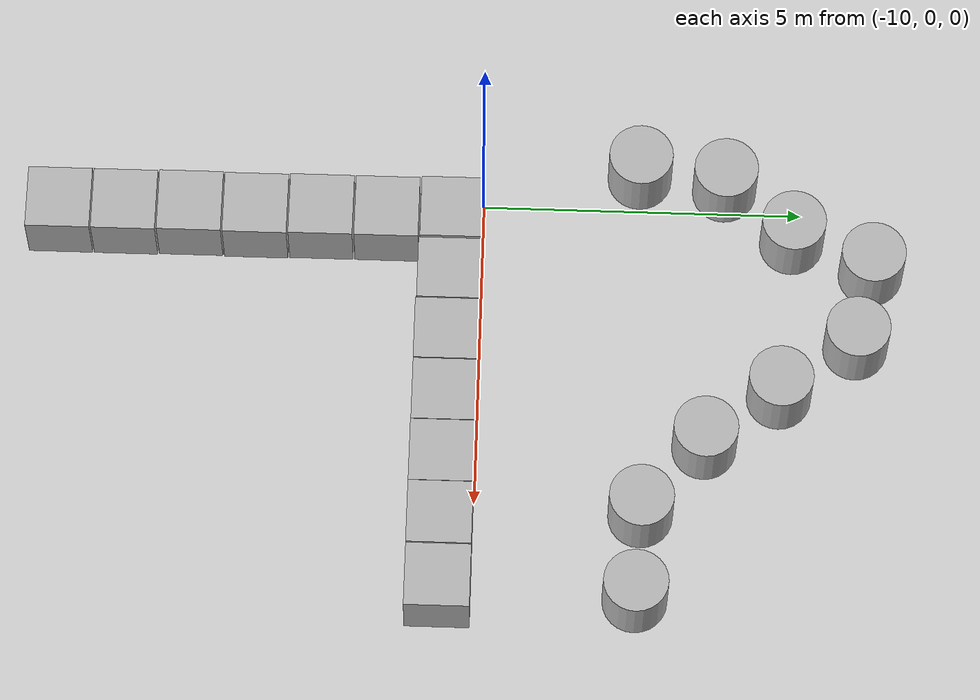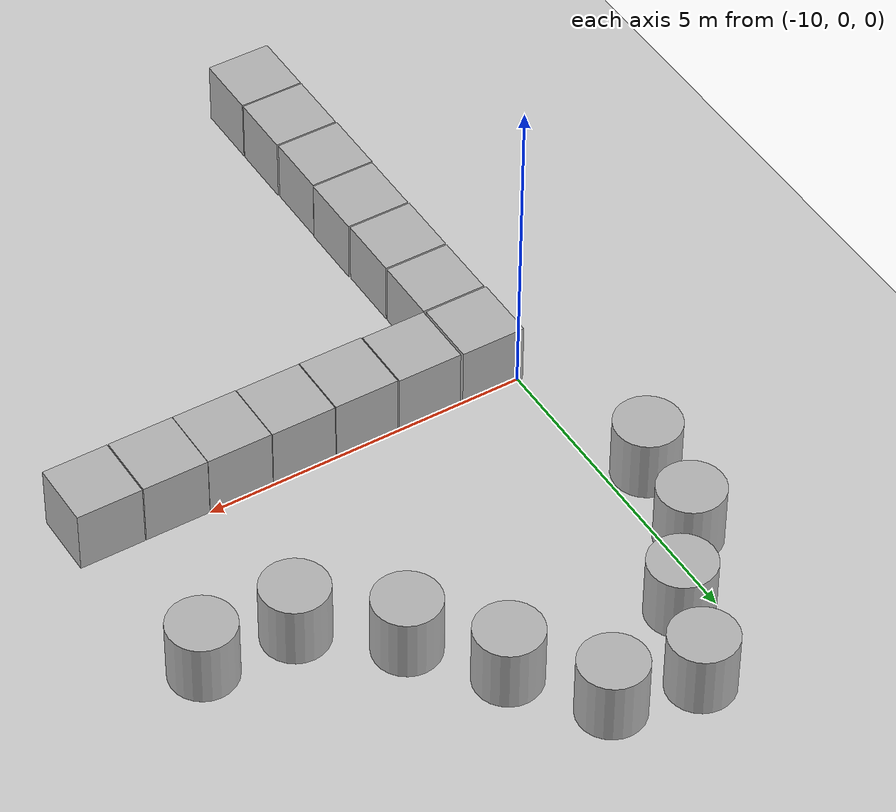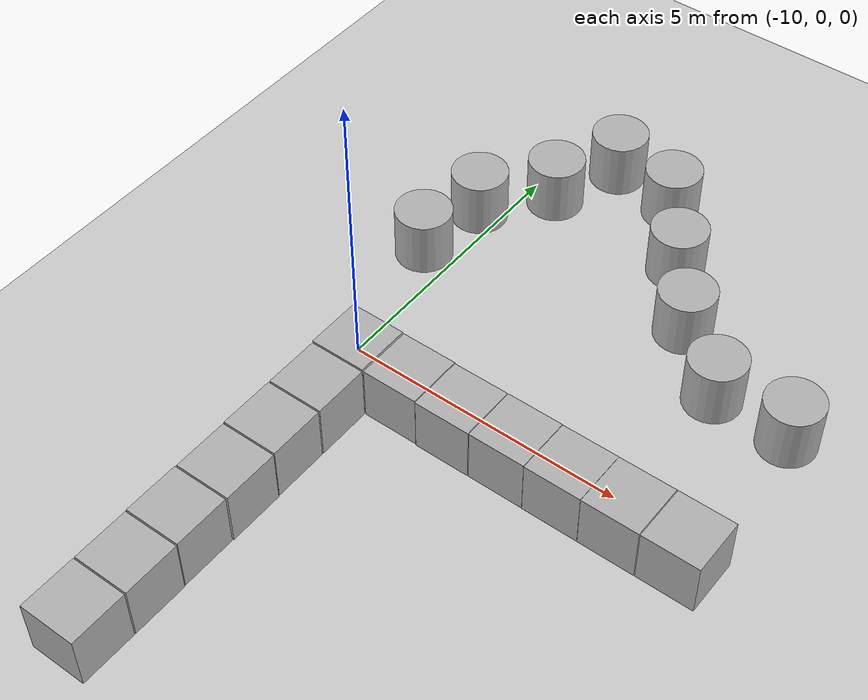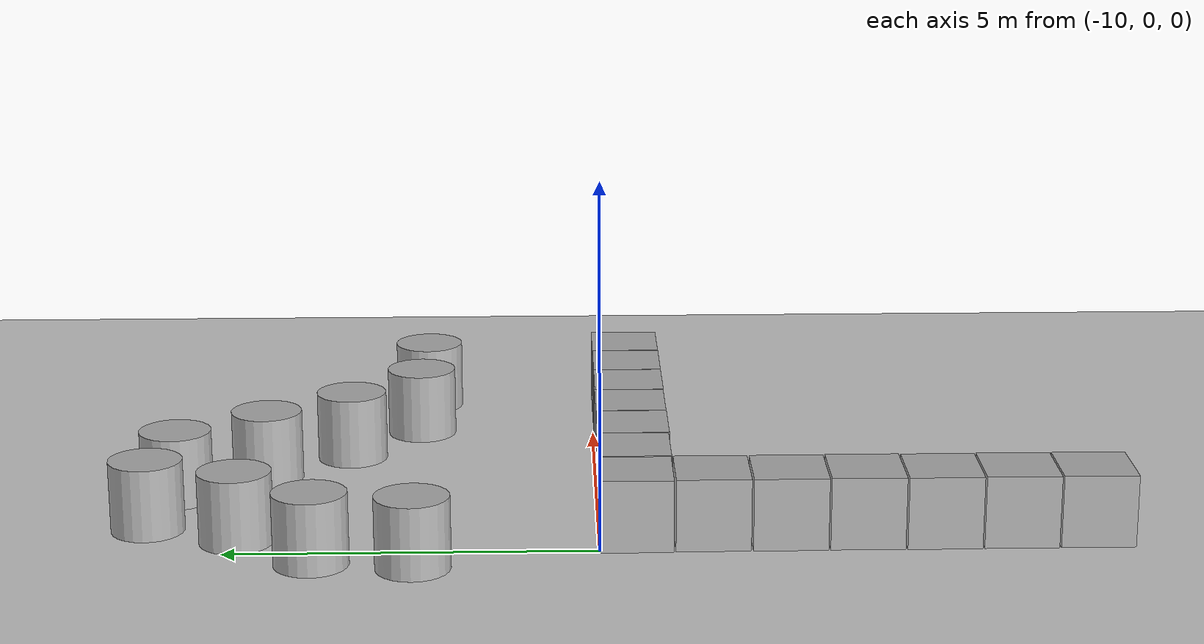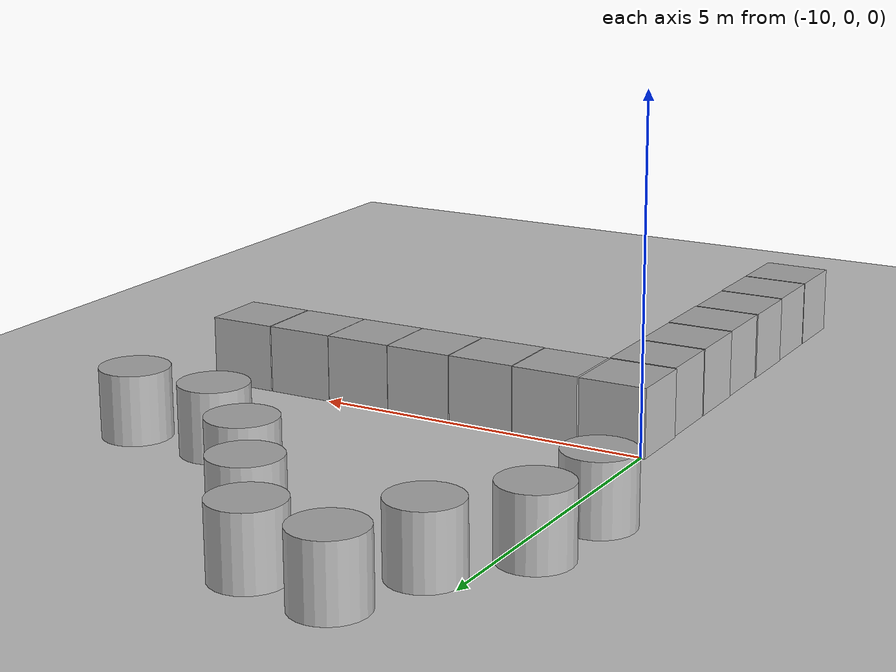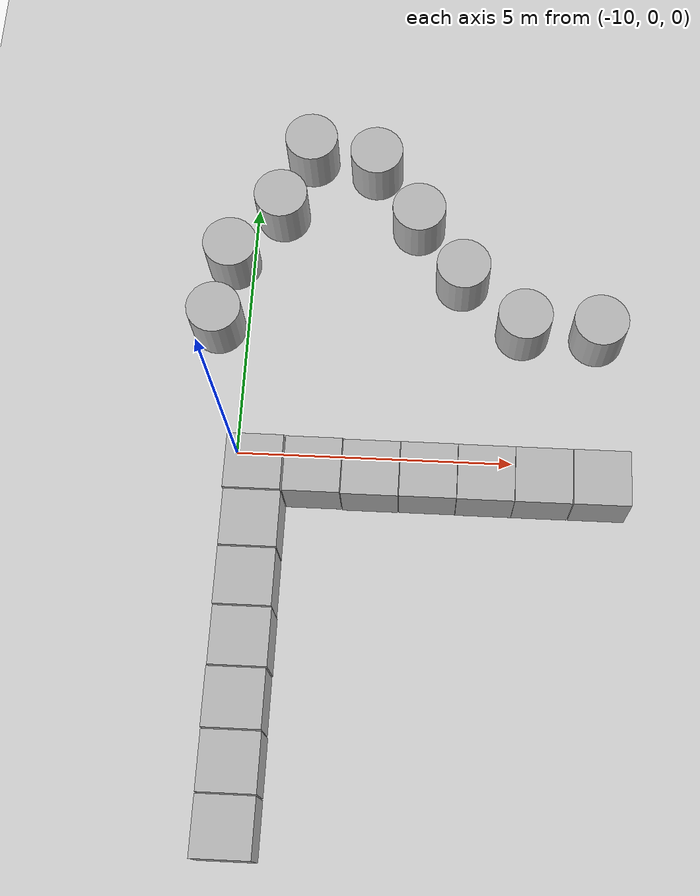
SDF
<sdf version='1.10'>
  <world name='empty'>
    <physics name='1ms' type='ode'>
      <max_step_size>0.001</max_step_size>
      <real_time_factor>1</real_time_factor>
      <solver>
        <type>quick</type>
        <iters>10</iters>
        <sor>1.3</sor>
      </solver>
      <real_time_update_rate>1000</real_time_update_rate>
    </physics>
    <plugin name='gz::sim::systems::Physics' filename='gz-sim-physics-system'/>
    <plugin name='gz::sim::systems::UserCommands' filename='gz-sim-user-commands-system'/>
    <plugin name='gz::sim::systems::SceneBroadcaster' filename='gz-sim-scene-broadcaster-system'/>
    <plugin name='gz::sim::systems::Sensors' filename='gz-sim-sensors-system'>
      <render_engine>ogre2</render_engine>
    </plugin>
    <plugin name='gz::sim::systems::Contact' filename='gz-sim-contact-system'/>
    <plugin name='trajectory_visual::TrajectoryVisualPlugin' filename='libtrajectory_visual_plugin.so'>
      <odom_topic>/odom</odom_topic>
      <min_dist>0.15</min_dist>
      <marker_radius>0.04</marker_radius>
      <color>1.0 0.2 0.0 1.0</color>
    </plugin>
    <gravity>0 0 -9.8000000000000007</gravity>
    <magnetic_field>5.5644999999999998e-06 2.2875799999999999e-05 -4.2388400000000002e-05</magnetic_field>
    <atmosphere type='adiabatic'/>
    <scene>
      <ambient>0.400000006 0.400000006 0.400000006 1</ambient>
      <background>0.699999988 0.699999988 0.699999988 1</background>
      <shadows>true</shadows>
    </scene>
    <model name='ground_plane'>
      <static>true</static>
      <link name='link'>
        <collision name='collision'>
          <geometry>
            <plane>
              <normal>0 0 1</normal>
              <size>100 100</size>
            </plane>
          </geometry>
          <surface>
            <friction>
              <ode>
                <mu>1</mu>
                <mu2>1</mu2>
              </ode>
            </friction>
            <bounce/>
            <contact/>
          </surface>
        </collision>
        <visual name='visual'>
          <geometry>
            <plane>
              <normal>0 0 1</normal>
              <size>100 100</size>
            </plane>
          </geometry>
          <material>
            <ambient>0.800000012 0.800000012 0.800000012 1</ambient>
            <diffuse>0.800000012 0.800000012 0.800000012 1</diffuse>
            <specular>0.800000012 0.800000012 0.800000012 1</specular>
          </material>
        </visual>
        <pose>0 0 0 0 0 0</pose>
        <inertial>
          <pose>0 0 0 0 0 0</pose>
          <mass>1</mass>
          <inertia>
            <ixx>1</ixx>
            <ixy>0</ixy>
            <ixz>0</ixz>
            <iyy>1</iyy>
            <iyz>0</iyz>
            <izz>1</izz>
          </inertia>
        </inertial>
        <enable_wind>false</enable_wind>
      </link>
      <pose>0 0 0 0 0 0</pose>
      <self_collide>false</self_collide>
    </model>
    <model name='cylinder'>
      <pose>-3.4815551340231528 2.5043755342540903 0.49999942638036005 -2.6911763794796138e-19 1.1721546005429021e-19 -2.1127119079518569e-20</pose>
      <link name='cylinder_link'>
        <inertial>
          <inertia>
            <ixx>0.14580000000000001</ixx>
            <ixy>0</ixy>
            <ixz>0</ixz>
            <iyy>0.14580000000000001</iyy>
            <iyz>0</iyz>
            <izz>0.125</izz>
          </inertia>
          <mass>1</mass>
          <pose>0 0 0 0 0 0</pose>
        </inertial>
        <collision name='cylinder_collision'>
          <geometry>
            <cylinder>
              <radius>0.5</radius>
              <length>1</length>
            </cylinder>
          </geometry>
          <surface>
            <friction>
              <ode/>
            </friction>
            <bounce/>
            <contact/>
          </surface>
        </collision>
        <visual name='cylinder_visual'>
          <geometry>
            <cylinder>
              <radius>0.5</radius>
              <length>1</length>
            </cylinder>
          </geometry>
          <material>
            <ambient>0.300000012 0.300000012 0.300000012 1</ambient>
            <diffuse>0.699999988 0.699999988 0.699999988 1</diffuse>
            <specular>1 1 1 1</specular>
          </material>
        </visual>
        <pose>0 0 0 0 0 0</pose>
        <enable_wind>false</enable_wind>
      </link>
      <static>false</static>
      <self_collide>false</self_collide>
    </model>
    <model name='box'>
      <pose>-4.4963167132048119 -0.50930663480307858 0.49999999990199806 6.2287739151293738e-22 9.3279666454713669e-22 -3.6315533669320137e-22</pose>
      <link name='box_link'>
        <inertial>
          <inertia>
            <ixx>0.16666</ixx>
            <ixy>0</ixy>
            <ixz>0</ixz>
            <iyy>0.16666</iyy>
            <iyz>0</iyz>
            <izz>0.16666</izz>
          </inertia>
          <mass>1</mass>
          <pose>0 0 0 0 0 0</pose>
        </inertial>
        <collision name='box_collision'>
          <geometry>
            <box>
              <size>1 1 1</size>
            </box>
          </geometry>
          <surface>
            <friction>
              <ode/>
            </friction>
            <bounce/>
            <contact/>
          </surface>
        </collision>
        <visual name='box_visual'>
          <geometry>
            <box>
              <size>1 1 1</size>
            </box>
          </geometry>
          <material>
            <ambient>0.300000012 0.300000012 0.300000012 1</ambient>
            <diffuse>0.699999988 0.699999988 0.699999988 1</diffuse>
            <specular>1 1 1 1</specular>
          </material>
        </visual>
        <pose>0 0 0 0 0 0</pose>
        <enable_wind>false</enable_wind>
      </link>
      <static>false</static>
      <self_collide>false</self_collide>
    </model>
    <model name='box_0'>
      <pose>-5.5001913575929482 -0.50826652320683952 0.49999999990199806 6.2287739151293738e-22 9.3279666454713669e-22 -3.6315533669320137e-22</pose>
      <link name='box_link'>
        <inertial>
          <inertia>
            <ixx>0.16666</ixx>
            <ixy>0</ixy>
            <ixz>0</ixz>
            <iyy>0.16666</iyy>
            <iyz>0</iyz>
            <izz>0.16666</izz>
          </inertia>
          <mass>1</mass>
          <pose>0 0 0 0 0 0</pose>
        </inertial>
        <collision name='box_collision'>
          <geometry>
            <box>
              <size>1 1 1</size>
            </box>
          </geometry>
          <surface>
            <friction>
              <ode/>
            </friction>
            <bounce/>
            <contact/>
          </surface>
        </collision>
        <visual name='box_visual'>
          <geometry>
            <box>
              <size>1 1 1</size>
            </box>
          </geometry>
          <material>
            <ambient>0.300000012 0.300000012 0.300000012 1</ambient>
            <diffuse>0.699999988 0.699999988 0.699999988 1</diffuse>
            <specular>1 1 1 1</specular>
          </material>
        </visual>
        <pose>0 0 0 0 0 0</pose>
        <enable_wind>false</enable_wind>
      </link>
      <static>false</static>
      <self_collide>false</self_collide>
    </model>
    <model name='box_1'>
      <pose>-6.5068457146219645 -0.50305590790951926 0.49999999990199806 1.7084716647436826e-21 1.7859135562978205e-21 -2.019312431235984e-22</pose>
      <link name='box_link'>
        <inertial>
          <inertia>
            <ixx>0.16666</ixx>
            <ixy>0</ixy>
            <ixz>0</ixz>
            <iyy>0.16666</iyy>
            <iyz>0</iyz>
            <izz>0.16666</izz>
          </inertia>
          <mass>1</mass>
          <pose>0 0 0 0 0 0</pose>
        </inertial>
        <collision name='box_collision'>
          <geometry>
            <box>
              <size>1 1 1</size>
            </box>
          </geometry>
          <surface>
            <friction>
              <ode/>
            </friction>
            <bounce/>
            <contact/>
          </surface>
        </collision>
        <visual name='box_visual'>
          <geometry>
            <box>
              <size>1 1 1</size>
            </box>
          </geometry>
          <material>
            <ambient>0.300000012 0.300000012 0.300000012 1</ambient>
            <diffuse>0.699999988 0.699999988 0.699999988 1</diffuse>
            <specular>1 1 1 1</specular>
          </material>
        </visual>
        <pose>0 0 0 0 0 0</pose>
        <enable_wind>false</enable_wind>
      </link>
      <static>false</static>
      <self_collide>false</self_collide>
    </model>
    <model name='box_2'>
      <pose>-7.5194086442308166 -0.50565850351863872 0.49999999990199806 6.2287739151293738e-22 9.3279666454713669e-22 -3.6315533669320137e-22</pose>
      <link name='box_link'>
        <inertial>
          <inertia>
            <ixx>0.16666</ixx>
            <ixy>0</ixy>
            <ixz>0</ixz>
            <iyy>0.16666</iyy>
            <iyz>0</iyz>
            <izz>0.16666</izz>
          </inertia>
          <mass>1</mass>
          <pose>0 0 0 0 0 0</pose>
        </inertial>
        <collision name='box_collision'>
          <geometry>
            <box>
              <size>1 1 1</size>
            </box>
          </geometry>
          <surface>
            <friction>
              <ode/>
            </friction>
            <bounce/>
            <contact/>
          </surface>
        </collision>
        <visual name='box_visual'>
          <geometry>
            <box>
              <size>1 1 1</size>
            </box>
          </geometry>
          <material>
            <ambient>0.300000012 0.300000012 0.300000012 1</ambient>
            <diffuse>0.699999988 0.699999988 0.699999988 1</diffuse>
            <specular>1 1 1 1</specular>
          </material>
        </visual>
        <pose>0 0 0 0 0 0</pose>
        <enable_wind>false</enable_wind>
      </link>
      <static>false</static>
      <self_collide>false</self_collide>
    </model>
    <model name='box_3'>
      <pose>-8.5347614055701992 -0.48991995517916787 0.49999999990199806 6.2287739151293738e-22 9.3279666454713669e-22 -3.6315533669320137e-22</pose>
      <link name='box_link'>
        <inertial>
          <inertia>
            <ixx>0.16666</ixx>
            <ixy>0</ixy>
            <ixz>0</ixz>
            <iyy>0.16666</iyy>
            <iyz>0</iyz>
            <izz>0.16666</izz>
          </inertia>
          <mass>1</mass>
          <pose>0 0 0 0 0 0</pose>
        </inertial>
        <collision name='box_collision'>
          <geometry>
            <box>
              <size>1 1 1</size>
            </box>
          </geometry>
          <surface>
            <friction>
              <ode/>
            </friction>
            <bounce/>
            <contact/>
          </surface>
        </collision>
        <visual name='box_visual'>
          <geometry>
            <box>
              <size>1 1 1</size>
            </box>
          </geometry>
          <material>
            <ambient>0.300000012 0.300000012 0.300000012 1</ambient>
            <diffuse>0.699999988 0.699999988 0.699999988 1</diffuse>
            <specular>1 1 1 1</specular>
          </material>
        </visual>
        <pose>0 0 0 0 0 0</pose>
        <enable_wind>false</enable_wind>
      </link>
      <static>false</static>
      <self_collide>false</self_collide>
    </model>
    <model name='box_4'>
      <pose>-9.5687965741588883 -0.47584779047719861 0.49999999990199806 6.2287739151293738e-22 9.3279666454713669e-22 -3.6315533669320137e-22</pose>
      <link name='box_link'>
        <inertial>
          <inertia>
            <ixx>0.16666</ixx>
            <ixy>0</ixy>
            <ixz>0</ixz>
            <iyy>0.16666</iyy>
            <iyz>0</iyz>
            <izz>0.16666</izz>
          </inertia>
          <mass>1</mass>
          <pose>0 0 0 0 0 0</pose>
        </inertial>
        <collision name='box_collision'>
          <geometry>
            <box>
              <size>1 1 1</size>
            </box>
          </geometry>
          <surface>
            <friction>
              <ode/>
            </friction>
            <bounce/>
            <contact/>
          </surface>
        </collision>
        <visual name='box_visual'>
          <geometry>
            <box>
              <size>1 1 1</size>
            </box>
          </geometry>
          <material>
            <ambient>0.300000012 0.300000012 0.300000012 1</ambient>
            <diffuse>0.699999988 0.699999988 0.699999988 1</diffuse>
            <specular>1 1 1 1</specular>
          </material>
        </visual>
        <pose>0 0 0 0 0 0</pose>
        <enable_wind>false</enable_wind>
      </link>
      <static>false</static>
      <self_collide>false</self_collide>
    </model>
    <model name='box_5'>
      <pose>-9.5459837766786251 -1.5028683449097797 0.49999999990199806 6.2287739151293738e-22 9.3279666454713669e-22 -3.6315533669320137e-22</pose>
      <link name='box_link'>
        <inertial>
          <inertia>
            <ixx>0.16666</ixx>
            <ixy>0</ixy>
            <ixz>0</ixz>
            <iyy>0.16666</iyy>
            <iyz>0</iyz>
            <izz>0.16666</izz>
          </inertia>
          <mass>1</mass>
          <pose>0 0 0 0 0 0</pose>
        </inertial>
        <collision name='box_collision'>
          <geometry>
            <box>
              <size>1 1 1</size>
            </box>
          </geometry>
          <surface>
            <friction>
              <ode/>
            </friction>
            <bounce/>
            <contact/>
          </surface>
        </collision>
        <visual name='box_visual'>
          <geometry>
            <box>
              <size>1 1 1</size>
            </box>
          </geometry>
          <material>
            <ambient>0.300000012 0.300000012 0.300000012 1</ambient>
            <diffuse>0.699999988 0.699999988 0.699999988 1</diffuse>
            <specular>1 1 1 1</specular>
          </material>
        </visual>
        <pose>0 0 0 0 0 0</pose>
        <enable_wind>false</enable_wind>
      </link>
      <static>false</static>
      <self_collide>false</self_collide>
    </model>
    <model name='box_6'>
      <pose>-9.5456829700605166 -2.5298455167124518 0.49999999990199806 6.2287739151293738e-22 9.3279666454713669e-22 -3.6315533669320137e-22</pose>
      <link name='box_link'>
        <inertial>
          <inertia>
            <ixx>0.16666</ixx>
            <ixy>0</ixy>
            <ixz>0</ixz>
            <iyy>0.16666</iyy>
            <iyz>0</iyz>
            <izz>0.16666</izz>
          </inertia>
          <mass>1</mass>
          <pose>0 0 0 0 0 0</pose>
        </inertial>
        <collision name='box_collision'>
          <geometry>
            <box>
              <size>1 1 1</size>
            </box>
          </geometry>
          <surface>
            <friction>
              <ode/>
            </friction>
            <bounce/>
            <contact/>
          </surface>
        </collision>
        <visual name='box_visual'>
          <geometry>
            <box>
              <size>1 1 1</size>
            </box>
          </geometry>
          <material>
            <ambient>0.300000012 0.300000012 0.300000012 1</ambient>
            <diffuse>0.699999988 0.699999988 0.699999988 1</diffuse>
            <specular>1 1 1 1</specular>
          </material>
        </visual>
        <pose>0 0 0 0 0 0</pose>
        <enable_wind>false</enable_wind>
      </link>
      <static>false</static>
      <self_collide>false</self_collide>
    </model>
    <model name='box_7'>
      <pose>-9.5345200485735244 -3.5560242284738512 0.49999999990199806 6.2287739151293738e-22 9.3279666454713669e-22 -3.6315533669320137e-22</pose>
      <link name='box_link'>
        <inertial>
          <inertia>
            <ixx>0.16666</ixx>
            <ixy>0</ixy>
            <ixz>0</ixz>
            <iyy>0.16666</iyy>
            <iyz>0</iyz>
            <izz>0.16666</izz>
          </inertia>
          <mass>1</mass>
          <pose>0 0 0 0 0 0</pose>
        </inertial>
        <collision name='box_collision'>
          <geometry>
            <box>
              <size>1 1 1</size>
            </box>
          </geometry>
          <surface>
            <friction>
              <ode/>
            </friction>
            <bounce/>
            <contact/>
          </surface>
        </collision>
        <visual name='box_visual'>
          <geometry>
            <box>
              <size>1 1 1</size>
            </box>
          </geometry>
          <material>
            <ambient>0.300000012 0.300000012 0.300000012 1</ambient>
            <diffuse>0.699999988 0.699999988 0.699999988 1</diffuse>
            <specular>1 1 1 1</specular>
          </material>
        </visual>
        <pose>0 0 0 0 0 0</pose>
        <enable_wind>false</enable_wind>
      </link>
      <static>false</static>
      <self_collide>false</self_collide>
    </model>
    <model name='box_8'>
      <pose>-9.5443170364917229 -4.5811170942569497 0.49999999990199806 6.2287739151293738e-22 9.3279666454713669e-22 -3.6315533669320137e-22</pose>
      <link name='box_link'>
        <inertial>
          <inertia>
            <ixx>0.16666</ixx>
            <ixy>0</ixy>
            <ixz>0</ixz>
            <iyy>0.16666</iyy>
            <iyz>0</iyz>
            <izz>0.16666</izz>
          </inertia>
          <mass>1</mass>
          <pose>0 0 0 0 0 0</pose>
        </inertial>
        <collision name='box_collision'>
          <geometry>
            <box>
              <size>1 1 1</size>
            </box>
          </geometry>
          <surface>
            <friction>
              <ode/>
            </friction>
            <bounce/>
            <contact/>
          </surface>
        </collision>
        <visual name='box_visual'>
          <geometry>
            <box>
              <size>1 1 1</size>
            </box>
          </geometry>
          <material>
            <ambient>0.300000012 0.300000012 0.300000012 1</ambient>
            <diffuse>0.699999988 0.699999988 0.699999988 1</diffuse>
            <specular>1 1 1 1</specular>
          </material>
        </visual>
        <pose>0 0 0 0 0 0</pose>
        <enable_wind>false</enable_wind>
      </link>
      <static>false</static>
      <self_collide>false</self_collide>
    </model>
    <model name='box_9'>
      <pose>-9.5333745996817836 -5.6063399588401044 0.49999999990199806 6.2287739151293738e-22 9.3279666454713669e-22 -3.6315533669320137e-22</pose>
      <link name='box_link'>
        <inertial>
          <inertia>
            <ixx>0.16666</ixx>
            <ixy>0</ixy>
            <ixz>0</ixz>
            <iyy>0.16666</iyy>
            <iyz>0</iyz>
            <izz>0.16666</izz>
          </inertia>
          <mass>1</mass>
          <pose>0 0 0 0 0 0</pose>
        </inertial>
        <collision name='box_collision'>
          <geometry>
            <box>
              <size>1 1 1</size>
            </box>
          </geometry>
          <surface>
            <friction>
              <ode/>
            </friction>
            <bounce/>
            <contact/>
          </surface>
        </collision>
        <visual name='box_visual'>
          <geometry>
            <box>
              <size>1 1 1</size>
            </box>
          </geometry>
          <material>
            <ambient>0.300000012 0.300000012 0.300000012 1</ambient>
            <diffuse>0.699999988 0.699999988 0.699999988 1</diffuse>
            <specular>1 1 1 1</specular>
          </material>
        </visual>
        <pose>0 0 0 0 0 0</pose>
        <enable_wind>false</enable_wind>
      </link>
      <static>false</static>
      <self_collide>false</self_collide>
    </model>
    <model name='box_10'>
      <pose>-9.5334201363539659 -6.6297930349103087 0.49999999990199806 6.2287739151293738e-22 9.3279666454713669e-22 -3.6315533669320137e-22</pose>
      <link name='box_link'>
        <inertial>
          <inertia>
            <ixx>0.16666</ixx>
            <ixy>0</ixy>
            <ixz>0</ixz>
            <iyy>0.16666</iyy>
            <iyz>0</iyz>
            <izz>0.16666</izz>
          </inertia>
          <mass>1</mass>
          <pose>0 0 0 0 0 0</pose>
        </inertial>
        <collision name='box_collision'>
          <geometry>
            <box>
              <size>1 1 1</size>
            </box>
          </geometry>
          <surface>
            <friction>
              <ode/>
            </friction>
            <bounce/>
            <contact/>
          </surface>
        </collision>
        <visual name='box_visual'>
          <geometry>
            <box>
              <size>1 1 1</size>
            </box>
          </geometry>
          <material>
            <ambient>0.300000012 0.300000012 0.300000012 1</ambient>
            <diffuse>0.699999988 0.699999988 0.699999988 1</diffuse>
            <specular>1 1 1 1</specular>
          </material>
        </visual>
        <pose>0 0 0 0 0 0</pose>
        <enable_wind>false</enable_wind>
      </link>
      <static>false</static>
      <self_collide>false</self_collide>
    </model>
    <model name='box_11'>
      <pose>-3.4800370508299561 -0.50782409499384129 0.49999999990199806 6.2287739151293738e-22 9.3279666454713669e-22 -3.6315533669320137e-22</pose>
      <link name='box_link'>
        <inertial>
          <inertia>
            <ixx>0.16666</ixx>
            <ixy>0</ixy>
            <ixz>0</ixz>
            <iyy>0.16666</iyy>
            <iyz>0</iyz>
            <izz>0.16666</izz>
          </inertia>
          <mass>1</mass>
          <pose>0 0 0 0 0 0</pose>
        </inertial>
        <collision name='box_collision'>
          <geometry>
            <box>
              <size>1 1 1</size>
            </box>
          </geometry>
          <surface>
            <friction>
              <ode/>
            </friction>
            <bounce/>
            <contact/>
          </surface>
        </collision>
        <visual name='box_visual'>
          <geometry>
            <box>
              <size>1 1 1</size>
            </box>
          </geometry>
          <material>
            <ambient>0.300000012 0.300000012 0.300000012 1</ambient>
            <diffuse>0.699999988 0.699999988 0.699999988 1</diffuse>
            <specular>1 1 1 1</specular>
          </material>
        </visual>
        <pose>0 0 0 0 0 0</pose>
        <enable_wind>false</enable_wind>
      </link>
      <static>false</static>
      <self_collide>false</self_collide>
    </model>
    <model name='cylinder_0'>
      <pose>-4.8632763383212172 2.5645544739859374 0.49999942638036005 3.849187311032064e-20 1.3488781536106054e-19 1.9177066143664939e-20</pose>
      <link name='cylinder_link'>
        <inertial>
          <inertia>
            <ixx>0.14580000000000001</ixx>
            <ixy>0</ixy>
            <ixz>0</ixz>
            <iyy>0.14580000000000001</iyy>
            <iyz>0</iyz>
            <izz>0.125</izz>
          </inertia>
          <mass>1</mass>
          <pose>0 0 0 0 0 0</pose>
        </inertial>
        <collision name='cylinder_collision'>
          <geometry>
            <cylinder>
              <radius>0.5</radius>
              <length>1</length>
            </cylinder>
          </geometry>
          <surface>
            <friction>
              <ode/>
            </friction>
            <bounce/>
            <contact/>
          </surface>
        </collision>
        <visual name='cylinder_visual'>
          <geometry>
            <cylinder>
              <radius>0.5</radius>
              <length>1</length>
            </cylinder>
          </geometry>
          <material>
            <ambient>0.300000012 0.300000012 0.300000012 1</ambient>
            <diffuse>0.699999988 0.699999988 0.699999988 1</diffuse>
            <specular>1 1 1 1</specular>
          </material>
        </visual>
        <pose>0 0 0 0 0 0</pose>
        <enable_wind>false</enable_wind>
      </link>
      <static>false</static>
      <self_collide>false</self_collide>
    </model>
    <model name='cylinder_1'>
      <pose>-6.0188821067011329 3.5293459419043995 0.49999942638036005 -5.7637778800471894e-20 2.0639697214226545e-19 -2.7955778524210395e-20</pose>
      <link name='cylinder_link'>
        <inertial>
          <inertia>
            <ixx>0.14580000000000001</ixx>
            <ixy>0</ixy>
            <ixz>0</ixz>
            <iyy>0.14580000000000001</iyy>
            <iyz>0</iyz>
            <izz>0.125</izz>
          </inertia>
          <mass>1</mass>
          <pose>0 0 0 0 0 0</pose>
        </inertial>
        <collision name='cylinder_collision'>
          <geometry>
            <cylinder>
              <radius>0.5</radius>
              <length>1</length>
            </cylinder>
          </geometry>
          <surface>
            <friction>
              <ode/>
            </friction>
            <bounce/>
            <contact/>
          </surface>
        </collision>
        <visual name='cylinder_visual'>
          <geometry>
            <cylinder>
              <radius>0.5</radius>
              <length>1</length>
            </cylinder>
          </geometry>
          <material>
            <ambient>0.300000012 0.300000012 0.300000012 1</ambient>
            <diffuse>0.699999988 0.699999988 0.699999988 1</diffuse>
            <specular>1 1 1 1</specular>
          </material>
        </visual>
        <pose>0 0 0 0 0 0</pose>
        <enable_wind>false</enable_wind>
      </link>
      <static>false</static>
      <self_collide>false</self_collide>
    </model>
    <model name='cylinder_2'>
      <pose>-6.8893556623931822 4.6760828210922476 0.49999942638036005 5.0573969886091227e-19 1.359089659944165e-19 -1.4809373450142268e-20</pose>
      <link name='cylinder_link'>
        <inertial>
          <inertia>
            <ixx>0.14580000000000001</ixx>
            <ixy>0</ixy>
            <ixz>0</ixz>
            <iyy>0.14580000000000001</iyy>
            <iyz>0</iyz>
            <izz>0.125</izz>
          </inertia>
          <mass>1</mass>
          <pose>0 0 0 0 0 0</pose>
        </inertial>
        <collision name='cylinder_collision'>
          <geometry>
            <cylinder>
              <radius>0.5</radius>
              <length>1</length>
            </cylinder>
          </geometry>
          <surface>
            <friction>
              <ode/>
            </friction>
            <bounce/>
            <contact/>
          </surface>
        </collision>
        <visual name='cylinder_visual'>
          <geometry>
            <cylinder>
              <radius>0.5</radius>
              <length>1</length>
            </cylinder>
          </geometry>
          <material>
            <ambient>0.300000012 0.300000012 0.300000012 1</ambient>
            <diffuse>0.699999988 0.699999988 0.699999988 1</diffuse>
            <specular>1 1 1 1</specular>
          </material>
        </visual>
        <pose>0 0 0 0 0 0</pose>
        <enable_wind>false</enable_wind>
      </link>
      <static>false</static>
      <self_collide>false</self_collide>
    </model>
    <model name='cylinder_3'>
      <pose>-7.7508904689555536 5.857744241137592 0.49999942638036005 4.1654113408482326e-19 1.8067996178664473e-19 -9.4100800038936803e-21</pose>
      <link name='cylinder_link'>
        <inertial>
          <inertia>
            <ixx>0.14580000000000001</ixx>
            <ixy>0</ixy>
            <ixz>0</ixz>
            <iyy>0.14580000000000001</iyy>
            <iyz>0</iyz>
            <izz>0.125</izz>
          </inertia>
          <mass>1</mass>
          <pose>0 0 0 0 0 0</pose>
        </inertial>
        <collision name='cylinder_collision'>
          <geometry>
            <cylinder>
              <radius>0.5</radius>
              <length>1</length>
            </cylinder>
          </geometry>
          <surface>
            <friction>
              <ode/>
            </friction>
            <bounce/>
            <contact/>
          </surface>
        </collision>
        <visual name='cylinder_visual'>
          <geometry>
            <cylinder>
              <radius>0.5</radius>
              <length>1</length>
            </cylinder>
          </geometry>
          <material>
            <ambient>0.300000012 0.300000012 0.300000012 1</ambient>
            <diffuse>0.699999988 0.699999988 0.699999988 1</diffuse>
            <specular>1 1 1 1</specular>
          </material>
        </visual>
        <pose>0 0 0 0 0 0</pose>
        <enable_wind>false</enable_wind>
      </link>
      <static>false</static>
      <self_collide>false</self_collide>
    </model>
    <model name='cylinder_4'>
      <pose>-9.0112321484829643 6.0935317477668036 0.49999942638036005 2.8374218245058555e-19 -1.7124587046990204e-19 -2.2958603872989259e-21</pose>
      <link name='cylinder_link'>
        <inertial>
          <inertia>
            <ixx>0.14580000000000001</ixx>
            <ixy>0</ixy>
            <ixz>0</ixz>
            <iyy>0.14580000000000001</iyy>
            <iyz>0</iyz>
            <izz>0.125</izz>
          </inertia>
          <mass>1</mass>
          <pose>0 0 0 0 0 0</pose>
        </inertial>
        <collision name='cylinder_collision'>
          <geometry>
            <cylinder>
              <radius>0.5</radius>
              <length>1</length>
            </cylinder>
          </geometry>
          <surface>
            <friction>
              <ode/>
            </friction>
            <bounce/>
            <contact/>
          </surface>
        </collision>
        <visual name='cylinder_visual'>
          <geometry>
            <cylinder>
              <radius>0.5</radius>
              <length>1</length>
            </cylinder>
          </geometry>
          <material>
            <ambient>0.300000012 0.300000012 0.300000012 1</ambient>
            <diffuse>0.699999988 0.699999988 0.699999988 1</diffuse>
            <specular>1 1 1 1</specular>
          </material>
        </visual>
        <pose>0 0 0 0 0 0</pose>
        <enable_wind>false</enable_wind>
      </link>
      <static>false</static>
      <self_collide>false</self_collide>
    </model>
    <model name='cylinder_5'>
      <pose>-9.5074254764262935 4.8515181720574816 0.49999942638036005 6.1192414915830091e-20 -6.303621985141893e-20 6.5441838709823338e-22</pose>
      <link name='cylinder_link'>
        <inertial>
          <inertia>
            <ixx>0.14580000000000001</ixx>
            <ixy>0</ixy>
            <ixz>0</ixz>
            <iyy>0.14580000000000001</iyy>
            <iyz>0</iyz>
            <izz>0.125</izz>
          </inertia>
          <mass>1</mass>
          <pose>0 0 0 0 0 0</pose>
        </inertial>
        <collision name='cylinder_collision'>
          <geometry>
            <cylinder>
              <radius>0.5</radius>
              <length>1</length>
            </cylinder>
          </geometry>
          <surface>
            <friction>
              <ode/>
            </friction>
            <bounce/>
            <contact/>
          </surface>
        </collision>
        <visual name='cylinder_visual'>
          <geometry>
            <cylinder>
              <radius>0.5</radius>
              <length>1</length>
            </cylinder>
          </geometry>
          <material>
            <ambient>0.300000012 0.300000012 0.300000012 1</ambient>
            <diffuse>0.699999988 0.699999988 0.699999988 1</diffuse>
            <specular>1 1 1 1</specular>
          </material>
        </visual>
        <pose>0 0 0 0 0 0</pose>
        <enable_wind>false</enable_wind>
      </link>
      <static>false</static>
      <self_collide>false</self_collide>
    </model>
    <model name='cylinder_6'>
      <pose>-10.371334697539169 3.783898509749493 0.49999942638036005 7.0436110769496234e-20 1.0182418344101958e-19 8.1283351512527311e-22</pose>
      <link name='cylinder_link'>
        <inertial>
          <inertia>
            <ixx>0.14580000000000001</ixx>
            <ixy>0</ixy>
            <ixz>0</ixz>
            <iyy>0.14580000000000001</iyy>
            <iyz>0</iyz>
            <izz>0.125</izz>
          </inertia>
          <mass>1</mass>
          <pose>0 0 0 0 0 0</pose>
        </inertial>
        <collision name='cylinder_collision'>
          <geometry>
            <cylinder>
              <radius>0.5</radius>
              <length>1</length>
            </cylinder>
          </geometry>
          <surface>
            <friction>
              <ode/>
            </friction>
            <bounce/>
            <contact/>
          </surface>
        </collision>
        <visual name='cylinder_visual'>
          <geometry>
            <cylinder>
              <radius>0.5</radius>
              <length>1</length>
            </cylinder>
          </geometry>
          <material>
            <ambient>0.300000012 0.300000012 0.300000012 1</ambient>
            <diffuse>0.699999988 0.699999988 0.699999988 1</diffuse>
            <specular>1 1 1 1</specular>
          </material>
        </visual>
        <pose>0 0 0 0 0 0</pose>
        <enable_wind>false</enable_wind>
      </link>
      <static>false</static>
      <self_collide>false</self_collide>
    </model>
    <model name='cylinder_7'>
      <pose>-10.550279196227507 2.4472273749870683 0.49999942638036005 -1.6158773437251378e-19 -4.2857634271626512e-20 4.5575022959846964e-20</pose>
      <link name='cylinder_link'>
        <inertial>
          <inertia>
            <ixx>0.14580000000000001</ixx>
            <ixy>0</ixy>
            <ixz>0</ixz>
            <iyy>0.14580000000000001</iyy>
            <iyz>0</iyz>
            <izz>0.125</izz>
          </inertia>
          <mass>1</mass>
          <pose>0 0 0 0 0 0</pose>
        </inertial>
        <collision name='cylinder_collision'>
          <geometry>
            <cylinder>
              <radius>0.5</radius>
              <length>1</length>
            </cylinder>
          </geometry>
          <surface>
            <friction>
              <ode/>
            </friction>
            <bounce/>
            <contact/>
          </surface>
        </collision>
        <visual name='cylinder_visual'>
          <geometry>
            <cylinder>
              <radius>0.5</radius>
              <length>1</length>
            </cylinder>
          </geometry>
          <material>
            <ambient>0.300000012 0.300000012 0.300000012 1</ambient>
            <diffuse>0.699999988 0.699999988 0.699999988 1</diffuse>
            <specular>1 1 1 1</specular>
          </material>
        </visual>
        <pose>0 0 0 0 0 0</pose>
        <enable_wind>false</enable_wind>
      </link>
      <static>false</static>
      <self_collide>false</self_collide>
    </model>
    <light name='sun' type='directional'>
      <pose>0 0 10 0 0 0</pose>
      <cast_shadows>true</cast_shadows>
      <intensity>1</intensity>
      <direction>-0.5 0.10000000000000001 -0.90000000000000002</direction>
      <diffuse>0.800000012 0.800000012 0.800000012 1</diffuse>
      <specular>0.200000003 0.200000003 0.200000003 1</specular>
      <attenuation>
        <range>1000</range>
        <linear>0.01</linear>
        <constant>0.90000000000000002</constant>
        <quadratic>0.001</quadratic>
      </attenuation>
      <spot>
        <inner_angle>0</inner_angle>
        <outer_angle>0</outer_angle>
        <falloff>0</falloff>
      </spot>
    </light>
  </world>
</sdf>
